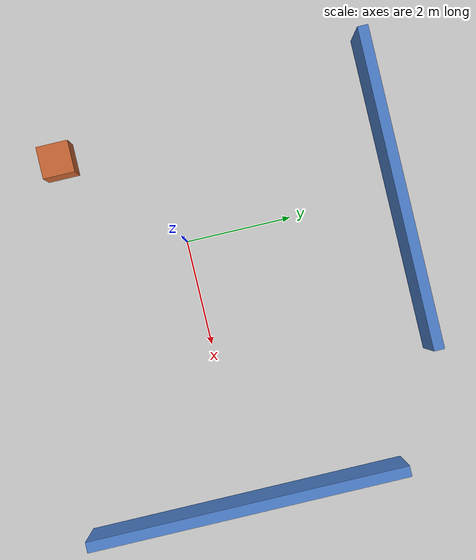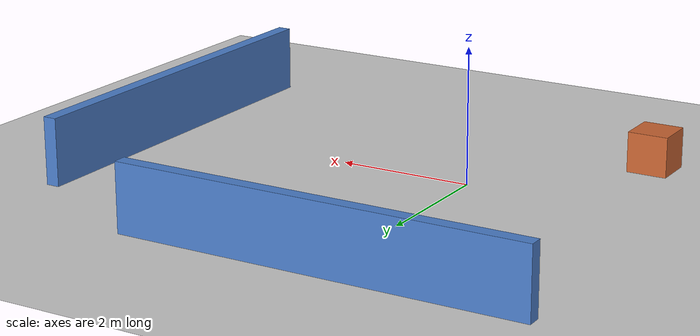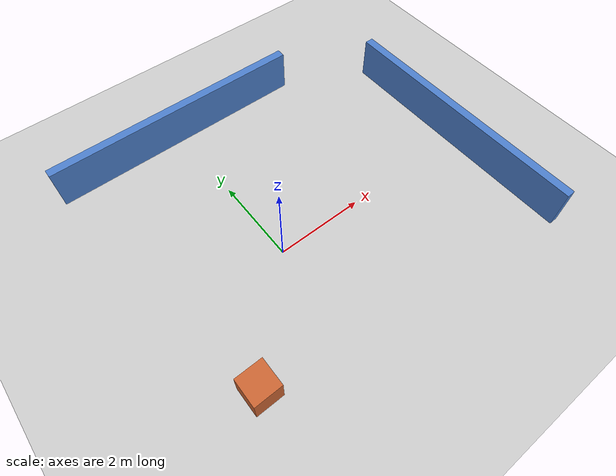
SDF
<?xml version="1.0"?>
<sdf version="1.9">
  <world name="room">

    <plugin filename="gz-sim-physics-system" name="gz::sim::systems::Physics"/>
    <plugin filename="gz-sim-scene-broadcaster-system" name="gz::sim::systems::SceneBroadcaster"/>
    <plugin filename="gz-sim-user-commands-system" name="gz::sim::systems::UserCommands"/>
    <plugin filename="gz-sim-sensors-system" name="gz::sim::systems::Sensors">
      <render_engine>ogre2</render_engine>
    </plugin>
    <plugin filename="gz-sim-imu-system" name="gz::sim::systems::Imu"/>

    <light type="directional" name="sun">
      <cast_shadows>true</cast_shadows>
      <pose>0 0 10 0 0 0</pose>
      <diffuse>0.8 0.8 0.8 1</diffuse>
      <specular>0.2 0.2 0.2 1</specular>
      <direction>-0.5 0.1 -0.9</direction>
    </light>

    <model name="ground_plane">
      <static>true</static>
      <link name="link">
        <collision name="collision">
          <geometry><plane><normal>0 0 1</normal><size>50 50</size></plane></geometry>
        </collision>
        <visual name="visual">
          <geometry><plane><normal>0 0 1</normal><size>50 50</size></plane></geometry>
          <material>
            <ambient>0.8 0.8 0.8 1</ambient>
            <diffuse>0.8 0.8 0.8 1</diffuse>
          </material>
        </visual>
      </link>
    </model>

    <model name="wall_front">
      <static>true</static>
      <pose>5 0 0.5 0 0 0</pose>
      <link name="link">
        <collision name="c"><geometry><box><size>0.2 6 1</size></box></geometry></collision>
        <visual name="v">
          <geometry><box><size>0.2 6 1</size></box></geometry>
          <material><ambient>0.3 0.5 0.8 1</ambient><diffuse>0.3 0.5 0.8 1</diffuse></material>
        </visual>
      </link>
    </model>

    <model name="wall_left">
      <static>true</static>
      <pose>0 4 0.5 0 0 0</pose>
      <link name="link">
        <collision name="c"><geometry><box><size>6 0.2 1</size></box></geometry></collision>
        <visual name="v">
          <geometry><box><size>6 0.2 1</size></box></geometry>
          <material><ambient>0.3 0.5 0.8 1</ambient><diffuse>0.3 0.5 0.8 1</diffuse></material>
        </visual>
      </link>
    </model>

    <model name="box_obstacle">
      <static>true</static>
      <pose>-2 -2 0.3 0 0 0</pose>
      <link name="link">
        <collision name="c"><geometry><box><size>0.6 0.6 0.6</size></box></geometry></collision>
        <visual name="v">
          <geometry><box><size>0.6 0.6 0.6</size></box></geometry>
          <material><ambient>0.8 0.4 0.2 1</ambient><diffuse>0.8 0.4 0.2 1</diffuse></material>
        </visual>
      </link>
    </model>

  </world>
</sdf>
